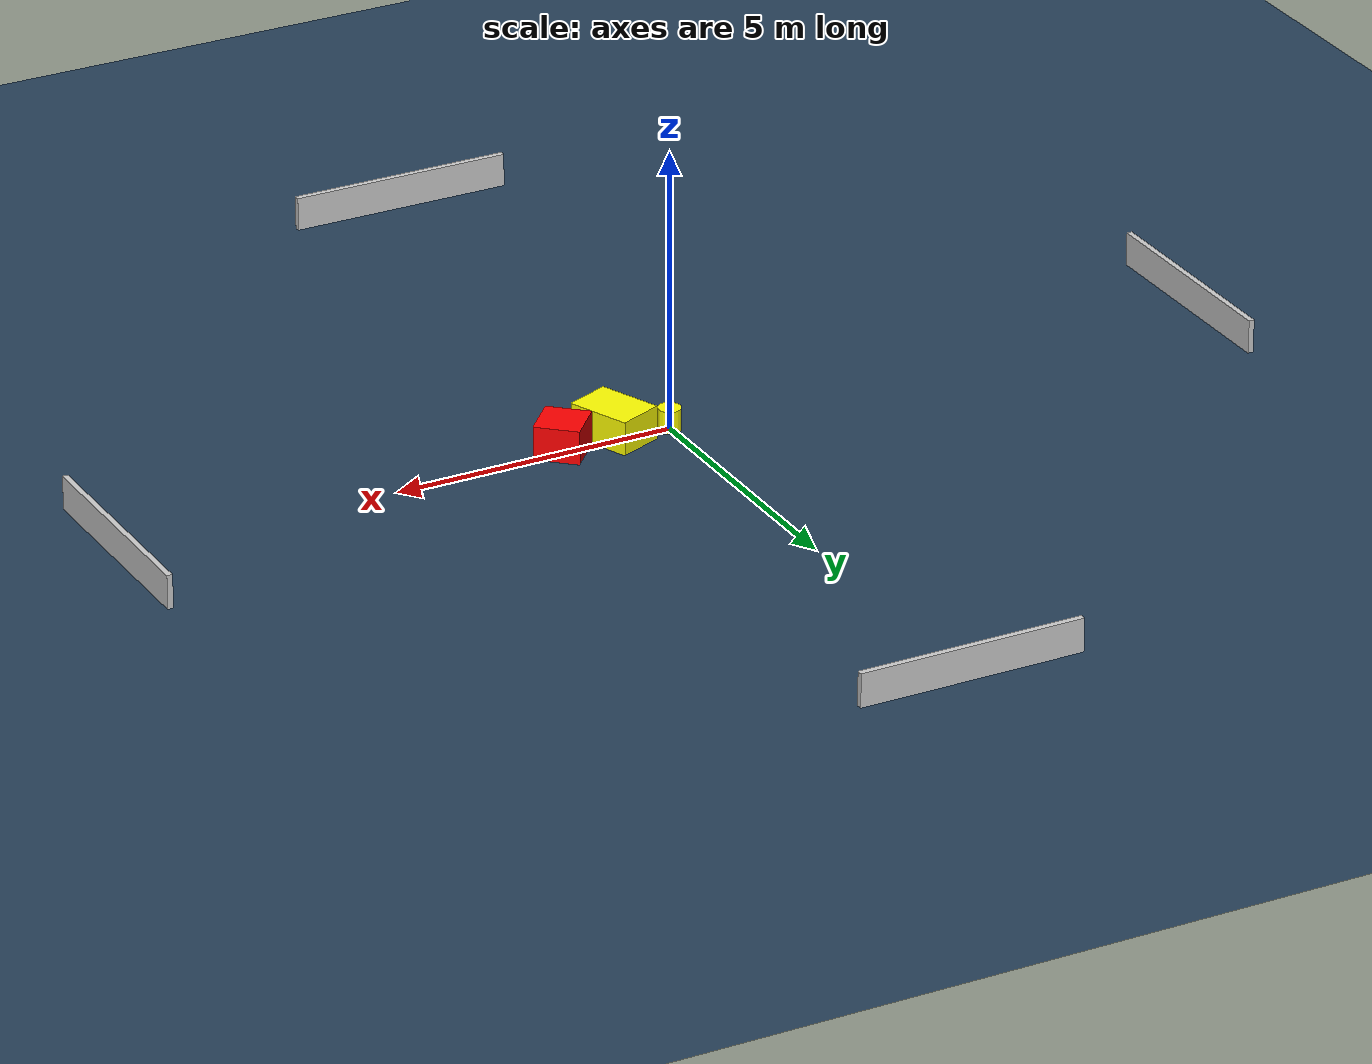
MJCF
<?xml version="1.0" ?>
<mujoco model="generated_environment">
  <option timestep="0.01" integrator="RK4" cone="elliptic"/>
  <default>
    <geom density="1"/>
  </default>
  <asset>
    <texture builtin="gradient" height="3072" name="skybox" rgb1="0.3 0.5 0.7" rgb2="0 0 0" type="skybox" width="512"/>
    <texture builtin="checker" height="300" name="groundplane" rgb1="0.2 0.3 0.4" rgb2="0.1 0.2 0.3" type="2d" width="300"/>
    <material name="groundplane" reflectance="0.2" texrepeat="5 5" texture="groundplane"/>
  </asset>
  <worldbody>
    <light dir="0 0 -1" directional="true" pos="0 0 1.5"/>
    <geom condim="3" friction="0.5 0.005 0.001" material="groundplane" name="floor" pos="0 0 0" size="0 0 0.05" type="plane"/>
    <body name="walls">
      <geom name="wall_1" condim="4" pos="-10.0 0.0 0.3" rgba="0.800000011920929 0.800000011920929 0.800000011920929 1.0" size="0.05 2.0 0.3" type="box"/>
      <geom name="wall_2" condim="4" pos="10.0 0.0 0.3" rgba="0.800000011920929 0.800000011920929 0.800000011920929 1.0" size="0.05 2.0 0.3" type="box"/>
      <geom name="wall_3" condim="4" pos="0.0 -10.0 0.3" rgba="0.800000011920929 0.800000011920929 0.800000011920929 1.0" size="2.0 0.05 0.3" type="box"/>
      <geom name="wall_4" condim="4" pos="0.0 10.0 0.3" rgba="0.800000011920929 0.800000011920929 0.800000011920929 1.0" size="2.0 0.05 0.3" type="box"/>
    </body>
    <body name="robot">
      <joint name="joint_x" type="slide" pos="0 0 0" axis="1 0 0"/>
      <joint name="joint_y" type="slide" pos="0 0 0" axis="0 1 0"/>
      <geom name="robot" type="cylinder" pos="0.0 0.0 0.2" size="0.2 0.2 0.0" mass="5.0" friction="1.0 0.005 0.0001" condim="4" rgba="1.0 1.0 0.0 1.0"/>
    </body>
    <body name="obstacle_1_movable">
      <geom name="obstacle_1_movable" condim="4" pos="0.9507096940830143 -0.15890281271455944 0.3" euler="0 0 292.3798628269525" friction="0.0 0.005 0.001" rgba="1.0 1.0 0.0 1.0" size="0.5779909042674611 0.4142964411465612 0.3" type="box" mass="0.1"/>
      <joint type="free"/>
    </body>
    <body name="obstacle_2_static">
      <geom name="obstacle_2_static" condim="4" pos="1.9459043582898095 -0.07547407070765984 0.3" euler="0 0 48.05662220617974" friction="0.0 0.005 0.001" rgba="1.0 0.0 0.0 1.0" size="0.4047596944098145 0.3953104591167627 0.3" type="box"/>
    </body>
  </worldbody>
  <actuator>
    <motor name="actuator_x" joint="joint_x" gear="1" ctrlrange="-1 1"/>
    <motor name="actuator_y" joint="joint_y" gear="1" ctrlrange="-1 1"/>
  </actuator>
</mujoco>
